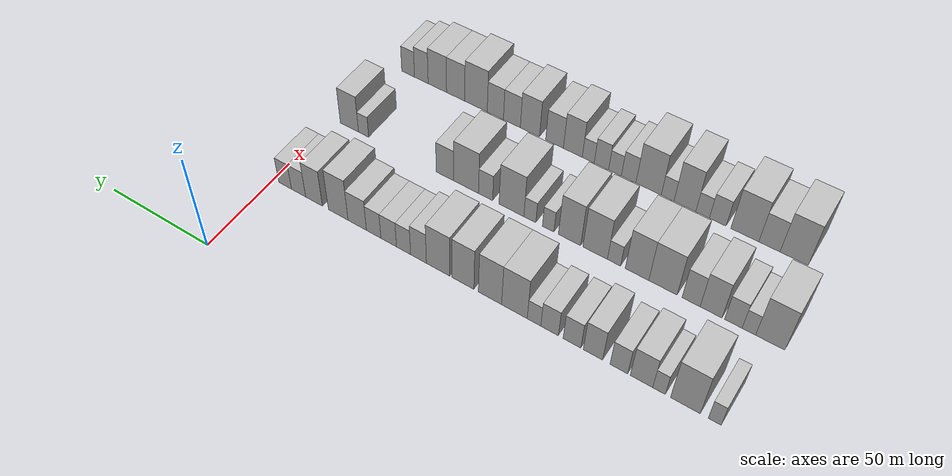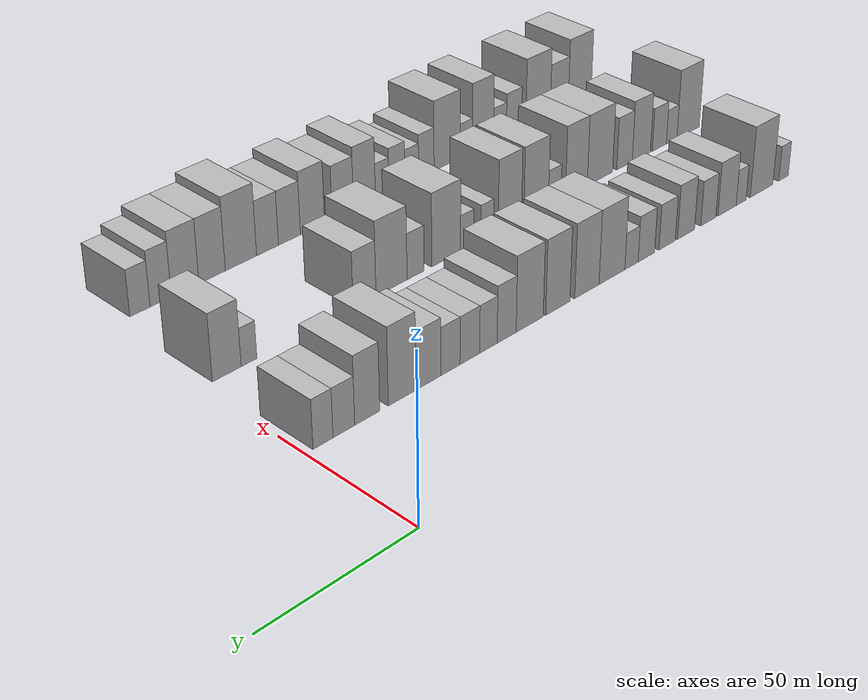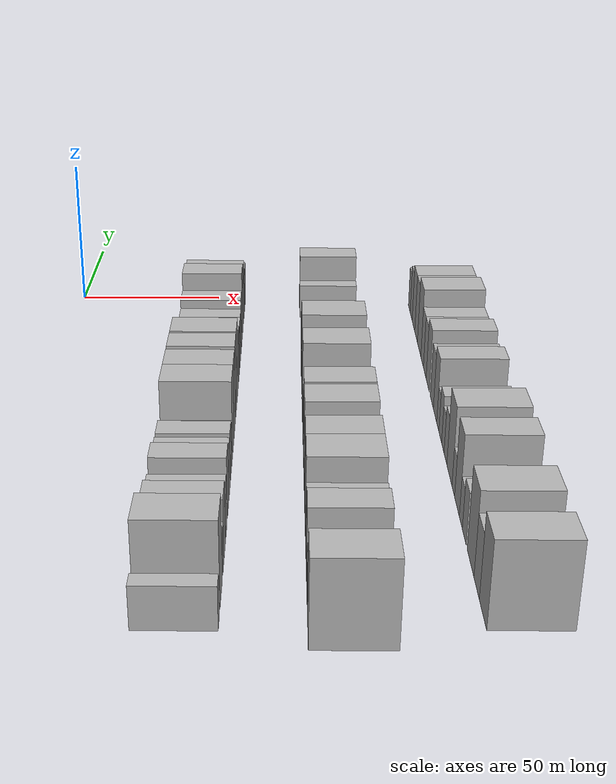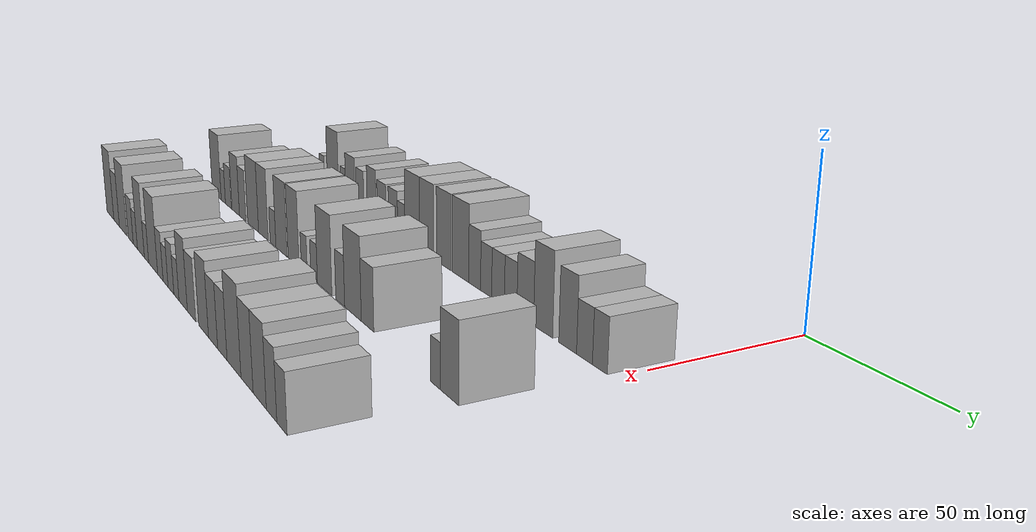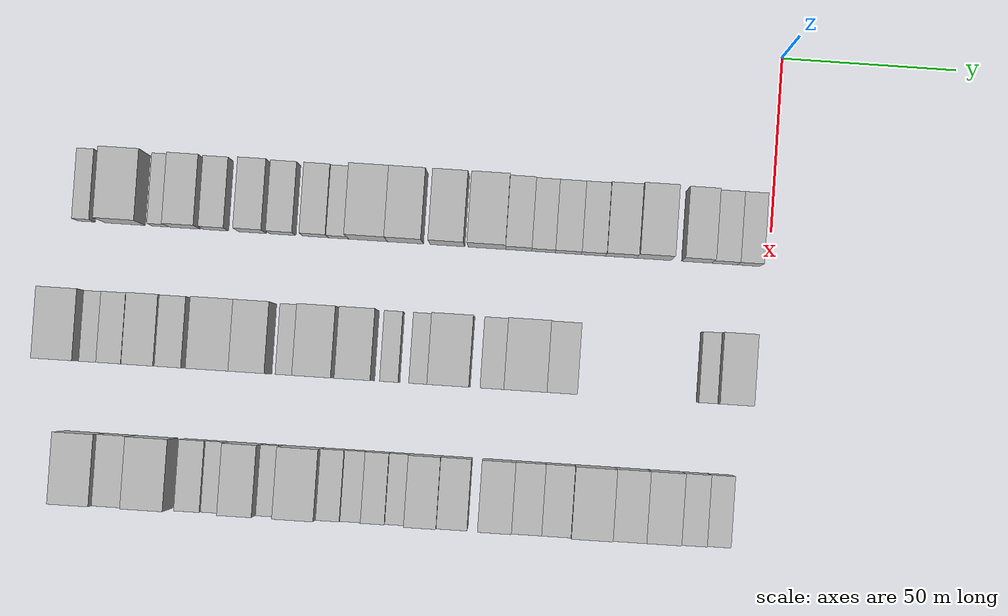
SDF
<sdf version="1.6">
 <world name="default">
  <model name="building_21">
   <static>1</static>
   <pose>50.0000 -195.7574 0 0.000000 0.000000 0.000000</pose>
   <link name="link">
    <pose>0 0 6.00 0 0 0</pose>
    <collision name="collision"><geometry><box><size>20.0000 4.8642 12.0000</size></box></geometry></collision>
    <visual name="visual">
     <cast_shadows>0</cast_shadows>
     <geometry><box><size>20.0000 4.8642 12.0000</size></box></geometry>
     <material>
      <script>
       <uri>model://HANNAS_wall/materials/scripts</uri>
       <uri>model://HANNAS_wall/materials/textures</uri>
       <name>vrc/HANNAS_wall</name>
      </script>
     </material>
    </visual>
   </link>
  </model>
  <model name="building_22">
   <static>1</static>
   <pose>50.0000 -184.6123 0 0.000000 0.000000 0.000000</pose>
   <link name="link">
    <pose>0 0 12.00 0 0 0</pose>
    <collision name="collision"><geometry><box><size>20.0000 11.4262 24.0000</size></box></geometry></collision>
    <visual name="visual">
     <cast_shadows>0</cast_shadows>
     <geometry><box><size>20.0000 11.4262 24.0000</size></box></geometry>
     <material>
      <script>
       <uri>model://HANNAS_wall/materials/scripts</uri>
       <uri>model://HANNAS_wall/materials/textures</uri>
       <name>vrc/HANNAS_wall</name>
      </script>
     </material>
    </visual>
   </link>
  </model>
  <model name="building_23">
   <static>1</static>
   <pose>50.0000 -174.4411 0 0.000000 0.000000 0.000000</pose>
   <link name="link">
    <pose>0 0 6.00 0 0 0</pose>
    <collision name="collision"><geometry><box><size>20.0000 4.9161 12.0000</size></box></geometry></collision>
    <visual name="visual">
     <cast_shadows>0</cast_shadows>
     <geometry><box><size>20.0000 4.9161 12.0000</size></box></geometry>
     <material>
      <script>
       <uri>model://HANNAS_wall/materials/scripts</uri>
       <uri>model://HANNAS_wall/materials/textures</uri>
       <name>vrc/HANNAS_wall</name>
      </script>
     </material>
    </visual>
   </link>
  </model>
  <model name="building_24">
   <static>1</static>
   <pose>50.0000 -167.5438 0 0.000000 0.000000 0.000000</pose>
   <link name="link">
    <pose>0 0 9.00 0 0 0</pose>
    <collision name="collision"><geometry><box><size>20.0000 8.8785 18.0000</size></box></geometry></collision>
    <visual name="visual">
     <cast_shadows>0</cast_shadows>
     <geometry><box><size>20.0000 8.8785 18.0000</size></box></geometry>
     <material>
      <script>
       <uri>model://HANNAS_wall/materials/scripts</uri>
       <uri>model://HANNAS_wall/materials/textures</uri>
       <name>vrc/HANNAS_wall</name>
      </script>
     </material>
    </visual>
   </link>
  </model>
  <model name="building_25">
   <static>1</static>
   <pose>50.0000 -158.5527 0 0.000000 0.000000 0.000000</pose>
   <link name="link">
    <pose>0 0 7.50 0 0 0</pose>
    <collision name="collision"><geometry><box><size>20.0000 7.1037 15.0000</size></box></geometry></collision>
    <visual name="visual">
     <cast_shadows>0</cast_shadows>
     <geometry><box><size>20.0000 7.1037 15.0000</size></box></geometry>
     <material>
      <script>
       <uri>model://HANNAS_wall/materials/scripts</uri>
       <uri>model://HANNAS_wall/materials/textures</uri>
       <name>vrc/HANNAS_wall</name>
      </script>
     </material>
    </visual>
   </link>
  </model>
  <model name="building_26">
   <static>1</static>
   <pose>50.0000 -148.0391 0 0.000000 0.000000 0.000000</pose>
   <link name="link">
    <pose>0 0 9.00 0 0 0</pose>
    <collision name="collision"><geometry><box><size>20.0000 7.9235 18.0000</size></box></geometry></collision>
    <visual name="visual">
     <cast_shadows>0</cast_shadows>
     <geometry><box><size>20.0000 7.9235 18.0000</size></box></geometry>
     <material>
      <script>
       <uri>model://HANNAS_wall/materials/scripts</uri>
       <uri>model://HANNAS_wall/materials/textures</uri>
       <name>vrc/HANNAS_wall</name>
      </script>
     </material>
    </visual>
   </link>
  </model>
  <model name="building_27">
   <static>1</static>
   <pose>50.0000 -139.3823 0 0.000000 0.000000 0.000000</pose>
   <link name="link">
    <pose>0 0 7.50 0 0 0</pose>
    <collision name="collision"><geometry><box><size>20.0000 7.3902 15.0000</size></box></geometry></collision>
    <visual name="visual">
     <cast_shadows>0</cast_shadows>
     <geometry><box><size>20.0000 7.3902 15.0000</size></box></geometry>
     <material>
      <script>
       <uri>model://HANNAS_wall/materials/scripts</uri>
       <uri>model://HANNAS_wall/materials/textures</uri>
       <name>vrc/HANNAS_wall</name>
      </script>
     </material>
    </visual>
   </link>
  </model>
  <model name="building_28">
   <static>1</static>
   <pose>50.0000 -129.9961 0 0.000000 0.000000 0.000000</pose>
   <link name="link">
    <pose>0 0 7.50 0 0 0</pose>
    <collision name="collision"><geometry><box><size>20.0000 7.3821 15.0000</size></box></geometry></collision>
    <visual name="visual">
     <cast_shadows>0</cast_shadows>
     <geometry><box><size>20.0000 7.3821 15.0000</size></box></geometry>
     <material>
      <script>
       <uri>model://HANNAS_wall/materials/scripts</uri>
       <uri>model://HANNAS_wall/materials/textures</uri>
       <name>vrc/HANNAS_wall</name>
      </script>
     </material>
    </visual>
   </link>
  </model>
  <model name="building_29">
   <static>1</static>
   <pose>50.0000 -123.3949 0 0.000000 0.000000 0.000000</pose>
   <link name="link">
    <pose>0 0 6.00 0 0 0</pose>
    <collision name="collision"><geometry><box><size>20.0000 5.8202 12.0000</size></box></geometry></collision>
    <visual name="visual">
     <cast_shadows>0</cast_shadows>
     <geometry><box><size>20.0000 5.8202 12.0000</size></box></geometry>
     <material>
      <script>
       <uri>model://HANNAS_wall/materials/scripts</uri>
       <uri>model://HANNAS_wall/materials/textures</uri>
       <name>vrc/HANNAS_wall</name>
      </script>
     </material>
    </visual>
   </link>
  </model>
  <model name="building_30">
   <static>1</static>
   <pose>50.0000 -114.9173 0 0.000000 0.000000 0.000000</pose>
   <link name="link">
    <pose>0 0 12.00 0 0 0</pose>
    <collision name="collision"><geometry><box><size>20.0000 11.1349 24.0000</size></box></geometry></collision>
    <visual name="visual">
     <cast_shadows>0</cast_shadows>
     <geometry><box><size>20.0000 11.1349 24.0000</size></box></geometry>
     <material>
      <script>
       <uri>model://HANNAS_wall/materials/scripts</uri>
       <uri>model://HANNAS_wall/materials/textures</uri>
       <name>vrc/HANNAS_wall</name>
      </script>
     </material>
    </visual>
   </link>
  </model>
  <model name="building_31">
   <static>1</static>
   <pose>50.0000 -104.2177 0 0.000000 0.000000 0.000000</pose>
   <link name="link">
    <pose>0 0 12.00 0 0 0</pose>
    <collision name="collision"><geometry><box><size>20.0000 10.2643 24.0000</size></box></geometry></collision>
    <visual name="visual">
     <cast_shadows>0</cast_shadows>
     <geometry><box><size>20.0000 10.2643 24.0000</size></box></geometry>
     <material>
      <script>
       <uri>model://HANNAS_wall/materials/scripts</uri>
       <uri>model://HANNAS_wall/materials/textures</uri>
       <name>vrc/HANNAS_wall</name>
      </script>
     </material>
    </visual>
   </link>
  </model>
  <model name="building_32">
   <static>1</static>
   <pose>50.0000 -92.1554 0 0.000000 0.000000 0.000000</pose>
   <link name="link">
    <pose>0 0 12.00 0 0 0</pose>
    <collision name="collision"><geometry><box><size>20.0000 9.8602 24.0000</size></box></geometry></collision>
    <visual name="visual">
     <cast_shadows>0</cast_shadows>
     <geometry><box><size>20.0000 9.8602 24.0000</size></box></geometry>
     <material>
      <script>
       <uri>model://HANNAS_wall/materials/scripts</uri>
       <uri>model://HANNAS_wall/materials/textures</uri>
       <name>vrc/HANNAS_wall</name>
      </script>
     </material>
    </visual>
   </link>
  </model>
  <model name="building_33">
   <static>1</static>
   <pose>50.0000 -80.8316 0 0.000000 0.000000 0.000000</pose>
   <link name="link">
    <pose>0 0 12.00 0 0 0</pose>
    <collision name="collision"><geometry><box><size>20.0000 10.7874 24.0000</size></box></geometry></collision>
    <visual name="visual">
     <cast_shadows>0</cast_shadows>
     <geometry><box><size>20.0000 10.7874 24.0000</size></box></geometry>
     <material>
      <script>
       <uri>model://HANNAS_wall/materials/scripts</uri>
       <uri>model://HANNAS_wall/materials/textures</uri>
       <name>vrc/HANNAS_wall</name>
      </script>
     </material>
    </visual>
   </link>
  </model>
  <model name="building_34">
   <static>1</static>
   <pose>50.0000 -71.7479 0 0.000000 0.000000 0.000000</pose>
   <link name="link">
    <pose>0 0 9.00 0 0 0</pose>
    <collision name="collision"><geometry><box><size>20.0000 7.3801 18.0000</size></box></geometry></collision>
    <visual name="visual">
     <cast_shadows>0</cast_shadows>
     <geometry><box><size>20.0000 7.3801 18.0000</size></box></geometry>
     <material>
      <script>
       <uri>model://HANNAS_wall/materials/scripts</uri>
       <uri>model://HANNAS_wall/materials/textures</uri>
       <name>vrc/HANNAS_wall</name>
      </script>
     </material>
    </visual>
   </link>
  </model>
  <model name="building_35">
   <static>1</static>
   <pose>50.0000 -64.7169 0 0.000000 0.000000 0.000000</pose>
   <link name="link">
    <pose>0 0 7.50 0 0 0</pose>
    <collision name="collision"><geometry><box><size>20.0000 6.6818 15.0000</size></box></geometry></collision>
    <visual name="visual">
     <cast_shadows>0</cast_shadows>
     <geometry><box><size>20.0000 6.6818 15.0000</size></box></geometry>
     <material>
      <script>
       <uri>model://HANNAS_wall/materials/scripts</uri>
       <uri>model://HANNAS_wall/materials/textures</uri>
       <name>vrc/HANNAS_wall</name>
      </script>
     </material>
    </visual>
   </link>
  </model>
  <model name="building_36">
   <static>1</static>
   <pose>50.0000 -57.6515 0 0.000000 0.000000 0.000000</pose>
   <link name="link">
    <pose>0 0 7.50 0 0 0</pose>
    <collision name="collision"><geometry><box><size>20.0000 7.4490 15.0000</size></box></geometry></collision>
    <visual name="visual">
     <cast_shadows>0</cast_shadows>
     <geometry><box><size>20.0000 7.4490 15.0000</size></box></geometry>
     <material>
      <script>
       <uri>model://HANNAS_wall/materials/scripts</uri>
       <uri>model://HANNAS_wall/materials/textures</uri>
       <name>vrc/HANNAS_wall</name>
      </script>
     </material>
    </visual>
   </link>
  </model>
  <model name="building_37">
   <static>1</static>
   <pose>50.0000 -50.4087 0 0.000000 0.000000 0.000000</pose>
   <link name="link">
    <pose>0 0 7.50 0 0 0</pose>
    <collision name="collision"><geometry><box><size>20.0000 7.0367 15.0000</size></box></geometry></collision>
    <visual name="visual">
     <cast_shadows>0</cast_shadows>
     <geometry><box><size>20.0000 7.0367 15.0000</size></box></geometry>
     <material>
      <script>
       <uri>model://HANNAS_wall/materials/scripts</uri>
       <uri>model://HANNAS_wall/materials/textures</uri>
       <name>vrc/HANNAS_wall</name>
      </script>
     </material>
    </visual>
   </link>
  </model>
  <model name="building_38">
   <static>1</static>
   <pose>50.0000 -42.3947 0 0.000000 0.000000 0.000000</pose>
   <link name="link">
    <pose>0 0 9.00 0 0 0</pose>
    <collision name="collision"><geometry><box><size>20.0000 8.9913 18.0000</size></box></geometry></collision>
    <visual name="visual">
     <cast_shadows>0</cast_shadows>
     <geometry><box><size>20.0000 8.9913 18.0000</size></box></geometry>
     <material>
      <script>
       <uri>model://HANNAS_wall/materials/scripts</uri>
       <uri>model://HANNAS_wall/materials/textures</uri>
       <name>vrc/HANNAS_wall</name>
      </script>
     </material>
    </visual>
   </link>
  </model>
  <model name="building_39">
   <static>1</static>
   <pose>50.0000 -32.9960 0 0.000000 0.000000 0.000000</pose>
   <link name="link">
    <pose>0 0 12.00 0 0 0</pose>
    <collision name="collision"><geometry><box><size>20.0000 9.8060 24.0000</size></box></geometry></collision>
    <visual name="visual">
     <cast_shadows>0</cast_shadows>
     <geometry><box><size>20.0000 9.8060 24.0000</size></box></geometry>
     <material>
      <script>
       <uri>model://HANNAS_wall/materials/scripts</uri>
       <uri>model://HANNAS_wall/materials/textures</uri>
       <name>vrc/HANNAS_wall</name>
      </script>
     </material>
    </visual>
   </link>
  </model>
  <model name="building_40">
   <static>1</static>
   <pose>50.0000 -20.8168 0 0.000000 0.000000 0.000000</pose>
   <link name="link">
    <pose>0 0 10.50 0 0 0</pose>
    <collision name="collision"><geometry><box><size>20.0000 8.5524 21.0000</size></box></geometry></collision>
    <visual name="visual">
     <cast_shadows>0</cast_shadows>
     <geometry><box><size>20.0000 8.5524 21.0000</size></box></geometry>
     <material>
      <script>
       <uri>model://HANNAS_wall/materials/scripts</uri>
       <uri>model://HANNAS_wall/materials/textures</uri>
       <name>vrc/HANNAS_wall</name>
      </script>
     </material>
    </visual>
   </link>
  </model>
  <model name="building_41">
   <static>1</static>
   <pose>50.0000 -12.8917 0 0.000000 0.000000 0.000000</pose>
   <link name="link">
    <pose>0 0 7.50 0 0 0</pose>
    <collision name="collision"><geometry><box><size>20.0000 7.2978 15.0000</size></box></geometry></collision>
    <visual name="visual">
     <cast_shadows>0</cast_shadows>
     <geometry><box><size>20.0000 7.2978 15.0000</size></box></geometry>
     <material>
      <script>
       <uri>model://HANNAS_wall/materials/scripts</uri>
       <uri>model://HANNAS_wall/materials/textures</uri>
       <name>vrc/HANNAS_wall</name>
      </script>
     </material>
    </visual>
   </link>
  </model>
  <model name="building_42">
   <static>1</static>
   <pose>50.0000 -5.9338 0 0.000000 0.000000 0.000000</pose>
   <link name="link">
    <pose>0 0 7.50 0 0 0</pose>
    <collision name="collision"><geometry><box><size>20.0000 6.6179 15.0000</size></box></geometry></collision>
    <visual name="visual">
     <cast_shadows>0</cast_shadows>
     <geometry><box><size>20.0000 6.6179 15.0000</size></box></geometry>
     <material>
      <script>
       <uri>model://HANNAS_wall/materials/scripts</uri>
       <uri>model://HANNAS_wall/materials/textures</uri>
       <name>vrc/HANNAS_wall</name>
      </script>
     </material>
    </visual>
   </link>
  </model>
  <model name="building_103">
   <static>1</static>
   <pose>90.0000 -198.9760 0 0.000000 0.000000 0.000000</pose>
   <link name="link">
    <pose>0 0 12.00 0 0 0</pose>
    <collision name="collision"><geometry><box><size>20.0000 11.3968 24.0000</size></box></geometry></collision>
    <visual name="visual">
     <cast_shadows>0</cast_shadows>
     <geometry><box><size>20.0000 11.3968 24.0000</size></box></geometry>
     <material>
      <script>
       <uri>model://HANNAS_wall/materials/scripts</uri>
       <uri>model://HANNAS_wall/materials/textures</uri>
       <name>vrc/HANNAS_wall</name>
      </script>
     </material>
    </visual>
   </link>
  </model>
  <model name="building_104">
   <static>1</static>
   <pose>90.0000 -190.6241 0 0.000000 0.000000 0.000000</pose>
   <link name="link">
    <pose>0 0 6.00 0 0 0</pose>
    <collision name="collision"><geometry><box><size>20.0000 5.3072 12.0000</size></box></geometry></collision>
    <visual name="visual">
     <cast_shadows>0</cast_shadows>
     <geometry><box><size>20.0000 5.3072 12.0000</size></box></geometry>
     <material>
      <script>
       <uri>model://HANNAS_wall/materials/scripts</uri>
       <uri>model://HANNAS_wall/materials/textures</uri>
       <name>vrc/HANNAS_wall</name>
      </script>
     </material>
    </visual>
   </link>
  </model>
  <model name="building_105">
   <static>1</static>
   <pose>90.0000 -184.4886 0 0.000000 0.000000 0.000000</pose>
   <link name="link">
    <pose>0 0 7.50 0 0 0</pose>
    <collision name="collision"><geometry><box><size>20.0000 6.9638 15.0000</size></box></geometry></collision>
    <visual name="visual">
     <cast_shadows>0</cast_shadows>
     <geometry><box><size>20.0000 6.9638 15.0000</size></box></geometry>
     <material>
      <script>
       <uri>model://HANNAS_wall/materials/scripts</uri>
       <uri>model://HANNAS_wall/materials/textures</uri>
       <name>vrc/HANNAS_wall</name>
      </script>
     </material>
    </visual>
   </link>
  </model>
  <model name="building_106">
   <static>1</static>
   <pose>90.0000 -175.5746 0 0.000000 0.000000 0.000000</pose>
   <link name="link">
    <pose>0 0 10.50 0 0 0</pose>
    <collision name="collision"><geometry><box><size>20.0000 8.8642 21.0000</size></box></geometry></collision>
    <visual name="visual">
     <cast_shadows>0</cast_shadows>
     <geometry><box><size>20.0000 8.8642 21.0000</size></box></geometry>
     <material>
      <script>
       <uri>model://HANNAS_wall/materials/scripts</uri>
       <uri>model://HANNAS_wall/materials/textures</uri>
       <name>vrc/HANNAS_wall</name>
      </script>
     </material>
    </visual>
   </link>
  </model>
  <model name="building_107">
   <static>1</static>
   <pose>90.0000 -167.4348 0 0.000000 0.000000 0.000000</pose>
   <link name="link">
    <pose>0 0 9.00 0 0 0</pose>
    <collision name="collision"><geometry><box><size>20.0000 7.4155 18.0000</size></box></geometry></collision>
    <visual name="visual">
     <cast_shadows>0</cast_shadows>
     <geometry><box><size>20.0000 7.4155 18.0000</size></box></geometry>
     <material>
      <script>
       <uri>model://HANNAS_wall/materials/scripts</uri>
       <uri>model://HANNAS_wall/materials/textures</uri>
       <name>vrc/HANNAS_wall</name>
      </script>
     </material>
    </visual>
   </link>
  </model>
  <model name="building_108">
   <static>1</static>
   <pose>90.0000 -155.7981 0 0.000000 0.000000 0.000000</pose>
   <link name="link">
    <pose>0 0 12.00 0 0 0</pose>
    <collision name="collision"><geometry><box><size>20.0000 11.8578 24.0000</size></box></geometry></collision>
    <visual name="visual">
     <cast_shadows>0</cast_shadows>
     <geometry><box><size>20.0000 11.8578 24.0000</size></box></geometry>
     <material>
      <script>
       <uri>model://HANNAS_wall/materials/scripts</uri>
       <uri>model://HANNAS_wall/materials/textures</uri>
       <name>vrc/HANNAS_wall</name>
      </script>
     </material>
    </visual>
   </link>
  </model>
  <model name="building_109">
   <static>1</static>
   <pose>90.0000 -144.8576 0 0.000000 0.000000 0.000000</pose>
   <link name="link">
    <pose>0 0 12.00 0 0 0</pose>
    <collision name="collision"><geometry><box><size>20.0000 10.0231 24.0000</size></box></geometry></collision>
    <visual name="visual">
     <cast_shadows>0</cast_shadows>
     <geometry><box><size>20.0000 10.0231 24.0000</size></box></geometry>
     <material>
      <script>
       <uri>model://HANNAS_wall/materials/scripts</uri>
       <uri>model://HANNAS_wall/materials/textures</uri>
       <name>vrc/HANNAS_wall</name>
      </script>
     </material>
    </visual>
   </link>
  </model>
  <model name="building_110">
   <static>1</static>
   <pose>90.0000 -135.0016 0 0.000000 0.000000 0.000000</pose>
   <link name="link">
    <pose>0 0 6.00 0 0 0</pose>
    <collision name="collision"><geometry><box><size>20.0000 5.6889 12.0000</size></box></geometry></collision>
    <visual name="visual">
     <cast_shadows>0</cast_shadows>
     <geometry><box><size>20.0000 5.6889 12.0000</size></box></geometry>
     <material>
      <script>
       <uri>model://HANNAS_wall/materials/scripts</uri>
       <uri>model://HANNAS_wall/materials/textures</uri>
       <name>vrc/HANNAS_wall</name>
      </script>
     </material>
    </visual>
   </link>
  </model>
  <model name="building_111">
   <static>1</static>
   <pose>90.0000 -126.7747 0 0.000000 0.000000 0.000000</pose>
   <link name="link">
    <pose>0 0 12.00 0 0 0</pose>
    <collision name="collision"><geometry><box><size>20.0000 10.7650 24.0000</size></box></geometry></collision>
    <visual name="visual">
     <cast_shadows>0</cast_shadows>
     <geometry><box><size>20.0000 10.7650 24.0000</size></box></geometry>
     <material>
      <script>
       <uri>model://HANNAS_wall/materials/scripts</uri>
       <uri>model://HANNAS_wall/materials/textures</uri>
       <name>vrc/HANNAS_wall</name>
      </script>
     </material>
    </visual>
   </link>
  </model>
  <model name="building_112">
   <static>1</static>
   <pose>90.0000 -115.3993 0 0.000000 0.000000 0.000000</pose>
   <link name="link">
    <pose>0 0 12.00 0 0 0</pose>
    <collision name="collision"><geometry><box><size>20.0000 9.9857 24.0000</size></box></geometry></collision>
    <visual name="visual">
     <cast_shadows>0</cast_shadows>
     <geometry><box><size>20.0000 9.9857 24.0000</size></box></geometry>
     <material>
      <script>
       <uri>model://HANNAS_wall/materials/scripts</uri>
       <uri>model://HANNAS_wall/materials/textures</uri>
       <name>vrc/HANNAS_wall</name>
      </script>
     </material>
    </visual>
   </link>
  </model>
  <model name="building_113">
   <static>1</static>
   <pose>90.0000 -105.7879 0 0.000000 0.000000 0.000000</pose>
   <link name="link">
    <pose>0 0 6.00 0 0 0</pose>
    <collision name="collision"><geometry><box><size>20.0000 5.2371 12.0000</size></box></geometry></collision>
    <visual name="visual">
     <cast_shadows>0</cast_shadows>
     <geometry><box><size>20.0000 5.2371 12.0000</size></box></geometry>
     <material>
      <script>
       <uri>model://HANNAS_wall/materials/scripts</uri>
       <uri>model://HANNAS_wall/materials/textures</uri>
       <name>vrc/HANNAS_wall</name>
      </script>
     </material>
    </visual>
   </link>
  </model>
  <model name="building_114">
   <static>1</static>
   <pose>90.0000 -97.4152 0 0.000000 0.000000 0.000000</pose>
   <link name="link">
    <pose>0 0 6.00 0 0 0</pose>
    <collision name="collision"><geometry><box><size>20.0000 5.5084 12.0000</size></box></geometry></collision>
    <visual name="visual">
     <cast_shadows>0</cast_shadows>
     <geometry><box><size>20.0000 5.5084 12.0000</size></box></geometry>
     <material>
      <script>
       <uri>model://HANNAS_wall/materials/scripts</uri>
       <uri>model://HANNAS_wall/materials/textures</uri>
       <name>vrc/HANNAS_wall</name>
      </script>
     </material>
    </visual>
   </link>
  </model>
  <model name="building_115">
   <static>1</static>
   <pose>90.0000 -88.8334 0 0.000000 0.000000 0.000000</pose>
   <link name="link">
    <pose>0 0 12.00 0 0 0</pose>
    <collision name="collision"><geometry><box><size>20.0000 11.6552 24.0000</size></box></geometry></collision>
    <visual name="visual">
     <cast_shadows>0</cast_shadows>
     <geometry><box><size>20.0000 11.6552 24.0000</size></box></geometry>
     <material>
      <script>
       <uri>model://HANNAS_wall/materials/scripts</uri>
       <uri>model://HANNAS_wall/materials/textures</uri>
       <name>vrc/HANNAS_wall</name>
      </script>
     </material>
    </visual>
   </link>
  </model>
  <model name="building_116">
   <static>1</static>
   <pose>90.0000 -76.6361 0 0.000000 0.000000 0.000000</pose>
   <link name="link">
    <pose>0 0 7.50 0 0 0</pose>
    <collision name="collision"><geometry><box><size>20.0000 6.7393 15.0000</size></box></geometry></collision>
    <visual name="visual">
     <cast_shadows>0</cast_shadows>
     <geometry><box><size>20.0000 6.7393 15.0000</size></box></geometry>
     <material>
      <script>
       <uri>model://HANNAS_wall/materials/scripts</uri>
       <uri>model://HANNAS_wall/materials/textures</uri>
       <name>vrc/HANNAS_wall</name>
      </script>
     </material>
    </visual>
   </link>
  </model>
  <model name="building_117">
   <static>1</static>
   <pose>90.0000 -67.2768 0 0.000000 0.000000 0.000000</pose>
   <link name="link">
    <pose>0 0 12.00 0 0 0</pose>
    <collision name="collision"><geometry><box><size>20.0000 11.9793 24.0000</size></box></geometry></collision>
    <visual name="visual">
     <cast_shadows>0</cast_shadows>
     <geometry><box><size>20.0000 11.9793 24.0000</size></box></geometry>
     <material>
      <script>
       <uri>model://HANNAS_wall/materials/scripts</uri>
       <uri>model://HANNAS_wall/materials/textures</uri>
       <name>vrc/HANNAS_wall</name>
      </script>
     </material>
    </visual>
   </link>
  </model>
  <model name="building_118">
   <static>1</static>
   <pose>90.0000 -56.9865 0 0.000000 0.000000 0.000000</pose>
   <link name="link">
    <pose>0 0 9.00 0 0 0</pose>
    <collision name="collision"><geometry><box><size>20.0000 8.6012 18.0000</size></box></geometry></collision>
    <visual name="visual">
     <cast_shadows>0</cast_shadows>
     <geometry><box><size>20.0000 8.6012 18.0000</size></box></geometry>
     <material>
      <script>
       <uri>model://HANNAS_wall/materials/scripts</uri>
       <uri>model://HANNAS_wall/materials/textures</uri>
       <name>vrc/HANNAS_wall</name>
      </script>
     </material>
    </visual>
   </link>
  </model>
  <model name="building_119">
   <static>1</static>
   <pose>90.0000 -15.6695 0 0.000000 0.000000 0.000000</pose>
   <link name="link">
    <pose>0 0 6.00 0 0 0</pose>
    <collision name="collision"><geometry><box><size>20.0000 5.3443 12.0000</size></box></geometry></collision>
    <visual name="visual">
     <cast_shadows>0</cast_shadows>
     <geometry><box><size>20.0000 5.3443 12.0000</size></box></geometry>
     <material>
      <script>
       <uri>model://HANNAS_wall/materials/scripts</uri>
       <uri>model://HANNAS_wall/materials/textures</uri>
       <name>vrc/HANNAS_wall</name>
      </script>
     </material>
    </visual>
   </link>
  </model>
  <model name="building_120">
   <static>1</static>
   <pose>90.0000 -8.1820 0 0.000000 0.000000 0.000000</pose>
   <link name="link">
    <pose>0 0 10.50 0 0 0</pose>
    <collision name="collision"><geometry><box><size>20.0000 9.6308 21.0000</size></box></geometry></collision>
    <visual name="visual">
     <cast_shadows>0</cast_shadows>
     <geometry><box><size>20.0000 9.6308 21.0000</size></box></geometry>
     <material>
      <script>
       <uri>model://HANNAS_wall/materials/scripts</uri>
       <uri>model://HANNAS_wall/materials/textures</uri>
       <name>vrc/HANNAS_wall</name>
      </script>
     </material>
    </visual>
   </link>
  </model>
  <model name="building_189">
   <static>1</static>
   <pose>130.0000 -191.5894 0 0.000000 0.000000 0.000000</pose>
   <link name="link">
    <pose>0 0 12.00 0 0 0</pose>
    <collision name="collision"><geometry><box><size>20.0000 11.4588 24.0000</size></box></geometry></collision>
    <visual name="visual">
     <cast_shadows>0</cast_shadows>
     <geometry><box><size>20.0000 11.4588 24.0000</size></box></geometry>
     <material>
      <script>
       <uri>model://HANNAS_wall/materials/scripts</uri>
       <uri>model://HANNAS_wall/materials/textures</uri>
       <name>vrc/HANNAS_wall</name>
      </script>
     </material>
    </visual>
   </link>
  </model>
  <model name="building_190">
   <static>1</static>
   <pose>130.0000 -181.4581 0 0.000000 0.000000 0.000000</pose>
   <link name="link">
    <pose>0 0 9.00 0 0 0</pose>
    <collision name="collision"><geometry><box><size>20.0000 8.8039 18.0000</size></box></geometry></collision>
    <visual name="visual">
     <cast_shadows>0</cast_shadows>
     <geometry><box><size>20.0000 8.8039 18.0000</size></box></geometry>
     <material>
      <script>
       <uri>model://HANNAS_wall/materials/scripts</uri>
       <uri>model://HANNAS_wall/materials/textures</uri>
       <name>vrc/HANNAS_wall</name>
      </script>
     </material>
    </visual>
   </link>
  </model>
  <model name="building_191">
   <static>1</static>
   <pose>130.0000 -171.1613 0 0.000000 0.000000 0.000000</pose>
   <link name="link">
    <pose>0 0 12.00 0 0 0</pose>
    <collision name="collision"><geometry><box><size>20.0000 11.7897 24.0000</size></box></geometry></collision>
    <visual name="visual">
     <cast_shadows>0</cast_shadows>
     <geometry><box><size>20.0000 11.7897 24.0000</size></box></geometry>
     <material>
      <script>
       <uri>model://HANNAS_wall/materials/scripts</uri>
       <uri>model://HANNAS_wall/materials/textures</uri>
       <name>vrc/HANNAS_wall</name>
      </script>
     </material>
    </visual>
   </link>
  </model>
  <model name="building_192">
   <static>1</static>
   <pose>130.0000 -159.6792 0 0.000000 0.000000 0.000000</pose>
   <link name="link">
    <pose>0 0 7.50 0 0 0</pose>
    <collision name="collision"><geometry><box><size>20.0000 7.1745 15.0000</size></box></geometry></collision>
    <visual name="visual">
     <cast_shadows>0</cast_shadows>
     <geometry><box><size>20.0000 7.1745 15.0000</size></box></geometry>
     <material>
      <script>
       <uri>model://HANNAS_wall/materials/scripts</uri>
       <uri>model://HANNAS_wall/materials/textures</uri>
       <name>vrc/HANNAS_wall</name>
      </script>
     </material>
    </visual>
   </link>
  </model>
  <model name="building_193">
   <static>1</static>
   <pose>130.0000 -153.1422 0 0.000000 0.000000 0.000000</pose>
   <link name="link">
    <pose>0 0 6.00 0 0 0</pose>
    <collision name="collision"><geometry><box><size>20.0000 5.8994 12.0000</size></box></geometry></collision>
    <visual name="visual">
     <cast_shadows>0</cast_shadows>
     <geometry><box><size>20.0000 5.8994 12.0000</size></box></geometry>
     <material>
      <script>
       <uri>model://HANNAS_wall/materials/scripts</uri>
       <uri>model://HANNAS_wall/materials/textures</uri>
       <name>vrc/HANNAS_wall</name>
      </script>
     </material>
    </visual>
   </link>
  </model>
  <model name="building_194">
   <static>1</static>
   <pose>130.0000 -145.3897 0 0.000000 0.000000 0.000000</pose>
   <link name="link">
    <pose>0 0 12.00 0 0 0</pose>
    <collision name="collision"><geometry><box><size>20.0000 9.6055 24.0000</size></box></geometry></collision>
    <visual name="visual">
     <cast_shadows>0</cast_shadows>
     <geometry><box><size>20.0000 9.6055 24.0000</size></box></geometry>
     <material>
      <script>
       <uri>model://HANNAS_wall/materials/scripts</uri>
       <uri>model://HANNAS_wall/materials/textures</uri>
       <name>vrc/HANNAS_wall</name>
      </script>
     </material>
    </visual>
   </link>
  </model>
  <model name="building_195">
   <static>1</static>
   <pose>130.0000 -137.7580 0 0.000000 0.000000 0.000000</pose>
   <link name="link">
    <pose>0 0 6.00 0 0 0</pose>
    <collision name="collision"><geometry><box><size>20.0000 5.6580 12.0000</size></box></geometry></collision>
    <visual name="visual">
     <cast_shadows>0</cast_shadows>
     <geometry><box><size>20.0000 5.6580 12.0000</size></box></geometry>
     <material>
      <script>
       <uri>model://HANNAS_wall/materials/scripts</uri>
       <uri>model://HANNAS_wall/materials/textures</uri>
       <name>vrc/HANNAS_wall</name>
      </script>
     </material>
    </visual>
   </link>
  </model>
  <model name="building_196">
   <static>1</static>
   <pose>130.0000 -129.2004 0 0.000000 0.000000 0.000000</pose>
   <link name="link">
    <pose>0 0 12.00 0 0 0</pose>
    <collision name="collision"><geometry><box><size>20.0000 11.4571 24.0000</size></box></geometry></collision>
    <visual name="visual">
     <cast_shadows>0</cast_shadows>
     <geometry><box><size>20.0000 11.4571 24.0000</size></box></geometry>
     <material>
      <script>
       <uri>model://HANNAS_wall/materials/scripts</uri>
       <uri>model://HANNAS_wall/materials/textures</uri>
       <name>vrc/HANNAS_wall</name>
      </script>
     </material>
    </visual>
   </link>
  </model>
  <model name="building_197">
   <static>1</static>
   <pose>130.0000 -120.1477 0 0.000000 0.000000 0.000000</pose>
   <link name="link">
    <pose>0 0 7.50 0 0 0</pose>
    <collision name="collision"><geometry><box><size>20.0000 6.6482 15.0000</size></box></geometry></collision>
    <visual name="visual">
     <cast_shadows>0</cast_shadows>
     <geometry><box><size>20.0000 6.6482 15.0000</size></box></geometry>
     <material>
      <script>
       <uri>model://HANNAS_wall/materials/scripts</uri>
       <uri>model://HANNAS_wall/materials/textures</uri>
       <name>vrc/HANNAS_wall</name>
      </script>
     </material>
    </visual>
   </link>
  </model>
  <model name="building_198">
   <static>1</static>
   <pose>130.0000 -113.8631 0 0.000000 0.000000 0.000000</pose>
   <link name="link">
    <pose>0 0 6.00 0 0 0</pose>
    <collision name="collision"><geometry><box><size>20.0000 5.9211 12.0000</size></box></geometry></collision>
    <visual name="visual">
     <cast_shadows>0</cast_shadows>
     <geometry><box><size>20.0000 5.9211 12.0000</size></box></geometry>
     <material>
      <script>
       <uri>model://HANNAS_wall/materials/scripts</uri>
       <uri>model://HANNAS_wall/materials/textures</uri>
       <name>vrc/HANNAS_wall</name>
      </script>
     </material>
    </visual>
   </link>
  </model>
  <model name="building_199">
   <static>1</static>
   <pose>130.0000 -107.5539 0 0.000000 0.000000 0.000000</pose>
   <link name="link">
    <pose>0 0 7.50 0 0 0</pose>
    <collision name="collision"><geometry><box><size>20.0000 6.6973 15.0000</size></box></geometry></collision>
    <visual name="visual">
     <cast_shadows>0</cast_shadows>
     <geometry><box><size>20.0000 6.6973 15.0000</size></box></geometry>
     <material>
      <script>
       <uri>model://HANNAS_wall/materials/scripts</uri>
       <uri>model://HANNAS_wall/materials/textures</uri>
       <name>vrc/HANNAS_wall</name>
      </script>
     </material>
    </visual>
   </link>
  </model>
  <model name="building_200">
   <static>1</static>
   <pose>130.0000 -101.3727 0 0.000000 0.000000 0.000000</pose>
   <link name="link">
    <pose>0 0 6.00 0 0 0</pose>
    <collision name="collision"><geometry><box><size>20.0000 5.6650 12.0000</size></box></geometry></collision>
    <visual name="visual">
     <cast_shadows>0</cast_shadows>
     <geometry><box><size>20.0000 5.6650 12.0000</size></box></geometry>
     <material>
      <script>
       <uri>model://HANNAS_wall/materials/scripts</uri>
       <uri>model://HANNAS_wall/materials/textures</uri>
       <name>vrc/HANNAS_wall</name>
      </script>
     </material>
    </visual>
   </link>
  </model>
  <model name="building_201">
   <static>1</static>
   <pose>130.0000 -94.0416 0 0.000000 0.000000 0.000000</pose>
   <link name="link">
    <pose>0 0 10.50 0 0 0</pose>
    <collision name="collision"><geometry><box><size>20.0000 8.9973 21.0000</size></box></geometry></collision>
    <visual name="visual">
     <cast_shadows>0</cast_shadows>
     <geometry><box><size>20.0000 8.9973 21.0000</size></box></geometry>
     <material>
      <script>
       <uri>model://HANNAS_wall/materials/scripts</uri>
       <uri>model://HANNAS_wall/materials/textures</uri>
       <name>vrc/HANNAS_wall</name>
      </script>
     </material>
    </visual>
   </link>
  </model>
  <model name="building_202">
   <static>1</static>
   <pose>130.0000 -85.2504 0 0.000000 0.000000 0.000000</pose>
   <link name="link">
    <pose>0 0 9.00 0 0 0</pose>
    <collision name="collision"><geometry><box><size>20.0000 8.5851 18.0000</size></box></geometry></collision>
    <visual name="visual">
     <cast_shadows>0</cast_shadows>
     <geometry><box><size>20.0000 8.5851 18.0000</size></box></geometry>
     <material>
      <script>
       <uri>model://HANNAS_wall/materials/scripts</uri>
       <uri>model://HANNAS_wall/materials/textures</uri>
       <name>vrc/HANNAS_wall</name>
      </script>
     </material>
    </visual>
   </link>
  </model>
  <model name="building_203">
   <static>1</static>
   <pose>130.0000 -73.2295 0 0.000000 0.000000 0.000000</pose>
   <link name="link">
    <pose>0 0 10.50 0 0 0</pose>
    <collision name="collision"><geometry><box><size>20.0000 9.4566 21.0000</size></box></geometry></collision>
    <visual name="visual">
     <cast_shadows>0</cast_shadows>
     <geometry><box><size>20.0000 9.4566 21.0000</size></box></geometry>
     <material>
      <script>
       <uri>model://HANNAS_wall/materials/scripts</uri>
       <uri>model://HANNAS_wall/materials/textures</uri>
       <name>vrc/HANNAS_wall</name>
      </script>
     </material>
    </visual>
   </link>
  </model>
  <model name="building_204">
   <static>1</static>
   <pose>130.0000 -64.2805 0 0.000000 0.000000 0.000000</pose>
   <link name="link">
    <pose>0 0 9.00 0 0 0</pose>
    <collision name="collision"><geometry><box><size>20.0000 8.4413 18.0000</size></box></geometry></collision>
    <visual name="visual">
     <cast_shadows>0</cast_shadows>
     <geometry><box><size>20.0000 8.4413 18.0000</size></box></geometry>
     <material>
      <script>
       <uri>model://HANNAS_wall/materials/scripts</uri>
       <uri>model://HANNAS_wall/materials/textures</uri>
       <name>vrc/HANNAS_wall</name>
      </script>
     </material>
    </visual>
   </link>
  </model>
  <model name="building_205">
   <static>1</static>
   <pose>130.0000 -55.9537 0 0.000000 0.000000 0.000000</pose>
   <link name="link">
    <pose>0 0 9.00 0 0 0</pose>
    <collision name="collision"><geometry><box><size>20.0000 8.2123 18.0000</size></box></geometry></collision>
    <visual name="visual">
     <cast_shadows>0</cast_shadows>
     <geometry><box><size>20.0000 8.2123 18.0000</size></box></geometry>
     <material>
      <script>
       <uri>model://HANNAS_wall/materials/scripts</uri>
       <uri>model://HANNAS_wall/materials/textures</uri>
       <name>vrc/HANNAS_wall</name>
      </script>
     </material>
    </visual>
   </link>
  </model>
  <model name="building_206">
   <static>1</static>
   <pose>130.0000 -46.0789 0 0.000000 0.000000 0.000000</pose>
   <link name="link">
    <pose>0 0 12.00 0 0 0</pose>
    <collision name="collision"><geometry><box><size>20.0000 11.5373 24.0000</size></box></geometry></collision>
    <visual name="visual">
     <cast_shadows>0</cast_shadows>
     <geometry><box><size>20.0000 11.5373 24.0000</size></box></geometry>
     <material>
      <script>
       <uri>model://HANNAS_wall/materials/scripts</uri>
       <uri>model://HANNAS_wall/materials/textures</uri>
       <name>vrc/HANNAS_wall</name>
      </script>
     </material>
    </visual>
   </link>
  </model>
  <model name="building_207">
   <static>1</static>
   <pose>130.0000 -35.5730 0 0.000000 0.000000 0.000000</pose>
   <link name="link">
    <pose>0 0 10.50 0 0 0</pose>
    <collision name="collision"><geometry><box><size>20.0000 9.4744 21.0000</size></box></geometry></collision>
    <visual name="visual">
     <cast_shadows>0</cast_shadows>
     <geometry><box><size>20.0000 9.4744 21.0000</size></box></geometry>
     <material>
      <script>
       <uri>model://HANNAS_wall/materials/scripts</uri>
       <uri>model://HANNAS_wall/materials/textures</uri>
       <name>vrc/HANNAS_wall</name>
      </script>
     </material>
    </visual>
   </link>
  </model>
  <model name="building_208">
   <static>1</static>
   <pose>130.0000 -25.9695 0 0.000000 0.000000 0.000000</pose>
   <link name="link">
    <pose>0 0 10.50 0 0 0</pose>
    <collision name="collision"><geometry><box><size>20.0000 9.7327 21.0000</size></box></geometry></collision>
    <visual name="visual">
     <cast_shadows>0</cast_shadows>
     <geometry><box><size>20.0000 9.7327 21.0000</size></box></geometry>
     <material>
      <script>
       <uri>model://HANNAS_wall/materials/scripts</uri>
       <uri>model://HANNAS_wall/materials/textures</uri>
       <name>vrc/HANNAS_wall</name>
      </script>
     </material>
    </visual>
   </link>
  </model>
  <model name="building_209">
   <static>1</static>
   <pose>130.0000 -17.4466 0 0.000000 0.000000 0.000000</pose>
   <link name="link">
    <pose>0 0 9.00 0 0 0</pose>
    <collision name="collision"><geometry><box><size>20.0000 7.3130 18.0000</size></box></geometry></collision>
    <visual name="visual">
     <cast_shadows>0</cast_shadows>
     <geometry><box><size>20.0000 7.3130 18.0000</size></box></geometry>
     <material>
      <script>
       <uri>model://HANNAS_wall/materials/scripts</uri>
       <uri>model://HANNAS_wall/materials/textures</uri>
       <name>vrc/HANNAS_wall</name>
      </script>
     </material>
    </visual>
   </link>
  </model>
  <model name="building_210">
   <static>1</static>
   <pose>130.0000 -10.3470 0 0.000000 0.000000 0.000000</pose>
   <link name="link">
    <pose>0 0 7.50 0 0 0</pose>
    <collision name="collision"><geometry><box><size>20.0000 6.8861 15.0000</size></box></geometry></collision>
    <visual name="visual">
     <cast_shadows>0</cast_shadows>
     <geometry><box><size>20.0000 6.8861 15.0000</size></box></geometry>
     <material>
      <script>
       <uri>model://HANNAS_wall/materials/scripts</uri>
       <uri>model://HANNAS_wall/materials/textures</uri>
       <name>vrc/HANNAS_wall</name>
      </script>
     </material>
    </visual>
   </link>
  </model>
 </world>
</sdf>
